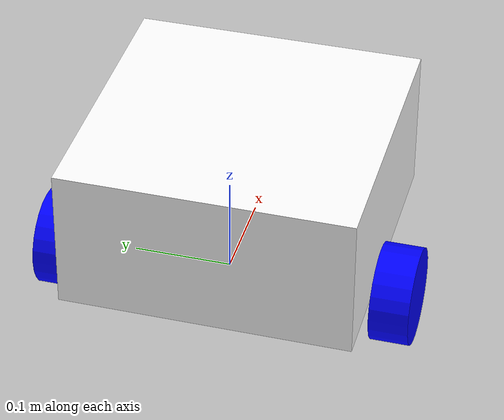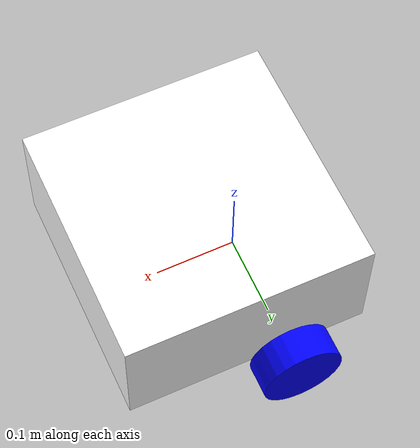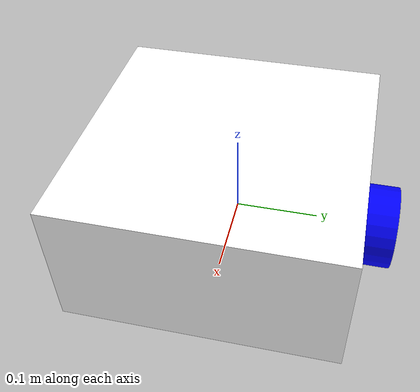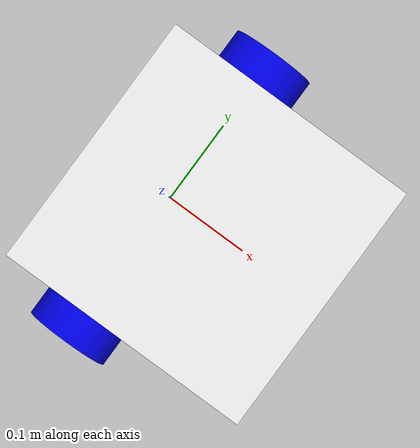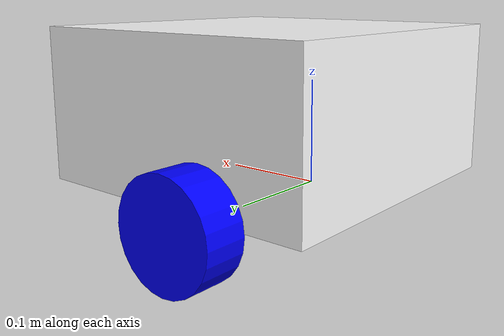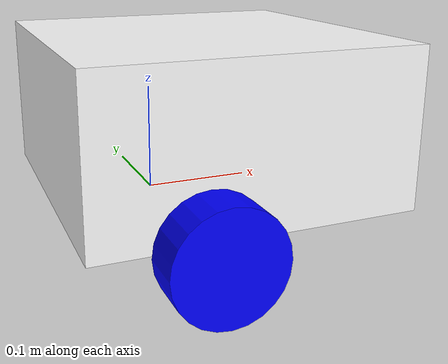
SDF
<sdf version='1.7'>
  <model name='robot'>
<plugin
    filename="libignition-gazebo-diff-drive-system.so"
    name="ignition::gazebo::systems::DiffDrive">

    <!-- Wheel Information -->
    <left_joint>left_wheel_joint</left_joint>
    <right_joint>right_wheel_joint</right_joint>
    <wheel_separation>0.35</wheel_separation>
    <wheel_radius>0.05</wheel_radius> <!-- Use radius instead of diameter -->

    <!-- Command and Odometry Topics -->
    <topic>cmd_vel</topic> <!-- Topic for velocity commands -->
    <odom_topic>odom</odom_topic> <!-- Topic for odometry data -->

    <!-- Frames -->
    <odometry_frame>odom</odometry_frame> <!-- Frame for odometry -->
    <robot_base_frame>base_link</robot_base_frame> <!-- Base frame of the robot -->

    <!-- Odometry Settings -->
    <publish_odom>true</publish_odom> <!-- Publish odometry data -->
    <publishOdomTF>true</publishOdomTF><!-- Publish wheel TF -->
    <odom_publish_frequency>30</odom_publish_frequency> <!-- Frequency of odometry updates -->

    <!-- Limits -->
    <max_wheel_torque>10.0</max_wheel_torque> <!-- Maximum wheel torque -->
    <max_wheel_acceleration>0.33</max_wheel_acceleration> <!-- Maximum wheel acceleration -->
</plugin>

<!--moving the robot using the keyboard-->

<!-- Moving Forward-->
<plugin filename="libignition-gazebo-triggered-publisher-system.so"
        name="ignition::gazebo::systems::TriggeredPublisher">
    <input type="ignition.msgs.Int32" topic="/keyboard/keypress">
        <match field="data">16777237</match>
    </input>
    <output type="ignition.msgs.Twist" topic="/cmd_vel">
        linear: {x: -2}, angular: {z: 0.0}
    </output>
</plugin>

<!-- Moving Backward -->

<plugin filename="libignition-gazebo-triggered-publisher-system.so"
        name="ignition::gazebo::systems::TriggeredPublisher">
    <input type="ignition.msgs.Int32" topic="/keyboard/keypress">
        <match field="data">16777235</match>
    </input>
    <output type="ignition.msgs.Twist" topic="/cmd_vel">
        linear: {x: 2}, angular: {z: 0.0}
    </output>
</plugin>

<!-- Moving Left -->

<plugin filename="libignition-gazebo-triggered-publisher-system.so"
        name="ignition::gazebo::systems::TriggeredPublisher">
    <input type="ignition.msgs.Int32" topic="/keyboard/keypress">
        <match field="data">16777234</match>
    </input>
    <output type="ignition.msgs.Twist" topic="/cmd_vel">
        linear: {x: 0}, angular: {z: 2}
    </output>
</plugin>

<!-- Moving Right -->

<plugin filename="libignition-gazebo-triggered-publisher-system.so"
        name="ignition::gazebo::systems::TriggeredPublisher">
    <input type="ignition.msgs.Int32" topic="/keyboard/keypress">
        <match field="data">16777236</match>
    </input>
    <output type="ignition.msgs.Twist" topic="/cmd_vel">
        linear: {x: 0}, angular: {z: -2}
    </output>
</plugin>

    <link name='base_link'>
      <inertial>
        <pose>0.065 0 0.0625 0 -0 0</pose>
        <mass>0.6</mass>
        <inertia>
          <ixx>0.00525625</ixx>
          <ixy>0</ixy>
          <ixz>0.0005625</ixz>
          <iyy>0.00593125</iyy>
          <iyz>0</iyz>
          <izz>0.008275</izz>
        </inertia>
      </inertial>
      <collision name='base_link_fixed_joint_lump__chassis_collision'>
        <pose>0.05 0 0.075 0 -0 0</pose>
        <geometry>
          <box>
            <size>0.3 0.3 0.15</size>
          </box>
        </geometry>
        <surface>
          <contact>
            <ode/>
          </contact>
          <friction>
            <ode/>
          </friction>
        </surface>
      </collision>
      <collision name='base_link_fixed_joint_lump__caster_wheel_collision_1'>
        <pose>0.14 0 0 0 -0 0</pose>
        <geometry>
          <sphere>
            <radius>0.05</radius>
          </sphere>
        </geometry>
        <surface>
          <contact>
            <ode/>
          </contact>
          <friction>
            <ode>
              <mu>0.001</mu>
              <mu2>0.001</mu2>
            </ode>
          </friction>
        </surface>
      </collision>
      <visual name='base_link_fixed_joint_lump__chassis_visual'>
        <pose>0.05 0 0.075 0 -0 0</pose>
        <geometry>
          <box>
            <size>0.3 0.3 0.15</size>
          </box>
        </geometry>
        <material>
          <ambient>1 1 1 1</ambient>  <!-- White color -->
          <diffuse>1 1 1 1</diffuse>
          <specular>0.1 0.1 0.1 1</specular>
        </material>
      </visual>
      <visual name='base_link_fixed_joint_lump__caster_wheel_visual_1'>
        <pose>0.14 0 0 0 -0 0</pose>
        <geometry>
          <sphere>
            <radius>0.05</radius>
          </sphere>
        </geometry>
        <material>
          <ambient>0 0 0 1</ambient>  <!-- Black color -->
          <diffuse>0 0 0 1</diffuse>
          <specular>0.1 0.1 0.1 1</specular>
        </material>

      </visual>
    </link>
    <joint name='left_wheel_joint' type='revolute'>
      <pose relative_to='base_link'>0 0.175 0 -1.5708 0 0</pose>
      <parent>base_link</parent>
      <child>left_wheel</child>
      <axis>
        <xyz>0 0 1</xyz>
        <limit>
          <lower>-1e+16</lower>
          <upper>1e+16</upper>
        </limit>
        <dynamics>
          <spring_reference>0</spring_reference>
          <spring_stiffness>0</spring_stiffness>
        </dynamics>
      </axis>
    </joint>
    <link name='left_wheel'>
      <pose relative_to='left_wheel_joint'>0 0 0 0 -0 0</pose>
      <inertial>
        <pose>0 0 0 0 -0 0</pose>
        <mass>0.1</mass>
        <inertia>
          <ixx>7.58333e-05</ixx>
          <ixy>0</ixy>
          <ixz>0</ixz>
          <iyy>7.58333e-05</iyy>
          <iyz>0</iyz>
          <izz>0.000125</izz>
        </inertia>
      </inertial>
      <collision name='left_wheel_collision'>
        <pose>0 0 0 0 -0 0</pose>
        <geometry>
          <cylinder>
            <length>0.04</length>
            <radius>0.05</radius>
          </cylinder>
        </geometry>
        <surface>
          <contact>
            <ode/>
          </contact>
          <friction>
            <ode/>
          </friction>
        </surface>
      </collision>
      <visual name='left_wheel_visual'>
        <pose>0 0 0 0 -0 0</pose>
        <geometry>
          <cylinder>
            <length>0.04</length>
            <radius>0.05</radius>
          </cylinder>
        </geometry>
        <material>
          <ambient>0 0 1 1</ambient>  <!-- Blue color -->
          <diffuse>0 0 1 1</diffuse>
          <specular>0.1 0.1 0.1 1</specular>
        </material>

      </visual>
    </link>
    <joint name='right_wheel_joint' type='revolute'>
      <pose relative_to='base_link'>0 -0.175 0 1.5708 -0 0</pose>
      <parent>base_link</parent>
      <child>right_wheel</child>
      <axis>
        <xyz>0 0 -1</xyz>
        <limit>
          <lower>-1e+16</lower>
          <upper>1e+16</upper>
        </limit>
        <dynamics>
          <spring_reference>0</spring_reference>
          <spring_stiffness>0</spring_stiffness>
        </dynamics>
      </axis>
    </joint>
    <link name='right_wheel'>
      <pose relative_to='right_wheel_joint'>0 0 0 0 -0 0</pose>
      <inertial>
        <pose>0 0 0 0 -0 0</pose>
        <mass>0.1</mass>
        <inertia>
          <ixx>7.58333e-05</ixx>
          <ixy>0</ixy>
          <ixz>0</ixz>
          <iyy>7.58333e-05</iyy>
          <iyz>0</iyz>
          <izz>0.000125</izz>
        </inertia>
      </inertial>
      <collision name='right_wheel_collision'>
        <pose>0 0 0 0 -0 0</pose>
        <geometry>
          <cylinder>
            <length>0.04</length>
            <radius>0.05</radius>
          </cylinder>
        </geometry>
        <surface>
          <contact>
            <ode/>
          </contact>
          <friction>
            <ode/>
          </friction>
        </surface>
      </collision>
      <visual name='right_wheel_visual'>
        <pose>0 0 0 0 -0 0</pose>
        <geometry>
          <cylinder>
            <length>0.04</length>
            <radius>0.05</radius>
          </cylinder>
        </geometry>
        <material>
          <ambient>0 0 1 1</ambient>  <!-- Blue color -->
          <diffuse>0 0 1 1</diffuse>
          <specular>0.1 0.1 0.1 1</specular>
        </material>

      </visual>
    </link>
  </model>
</sdf>
